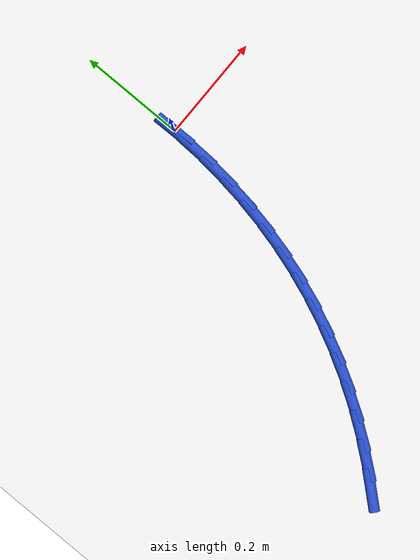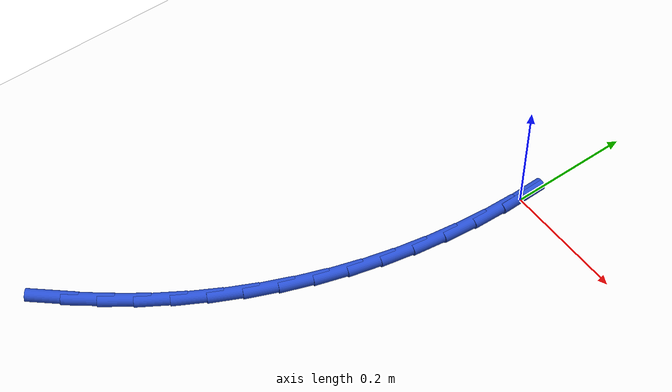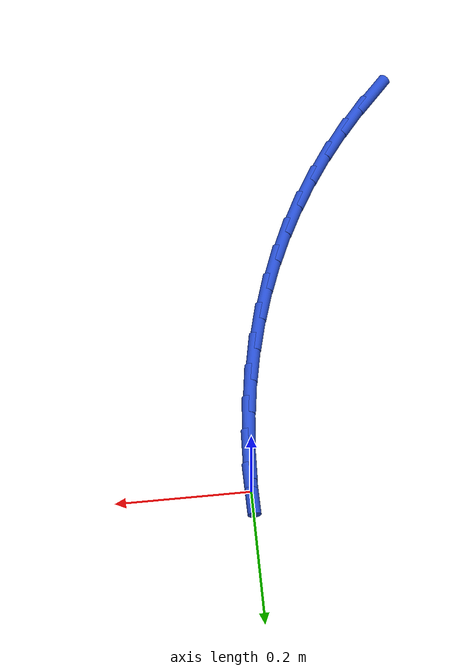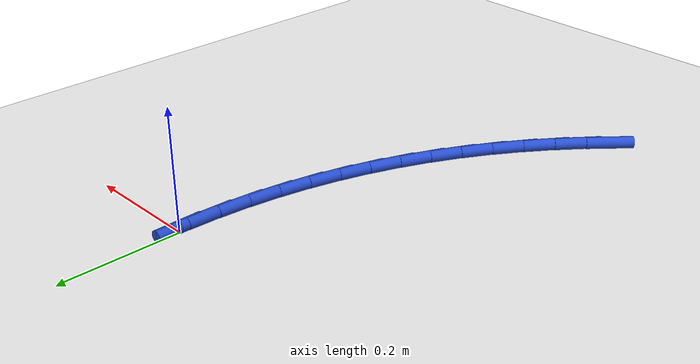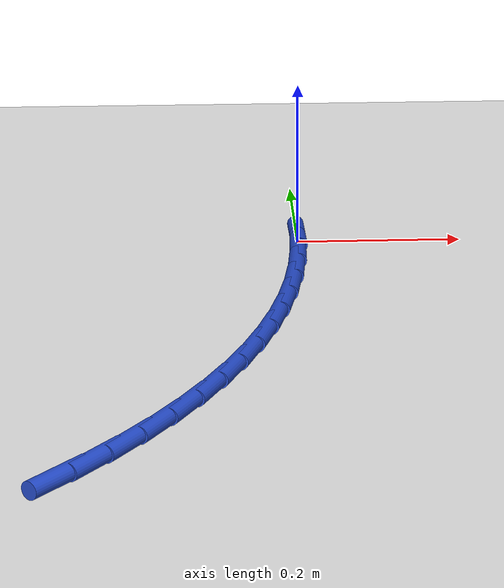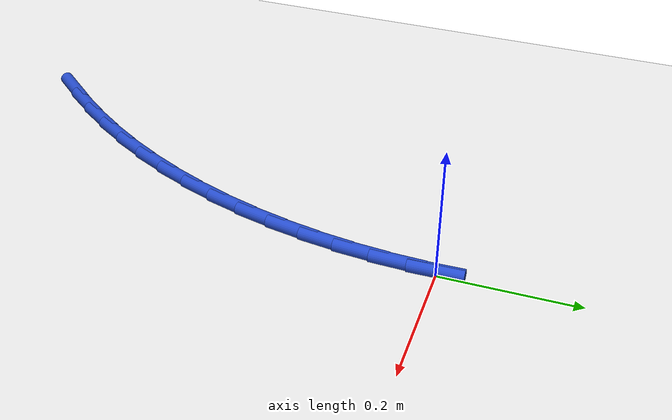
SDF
<sdf version="1.6">
 <world name="default">
  <model name="ground_plane">
   <static>1</static>
   <link name="link">
    <collision name="collision">
     <geometry><plane><normal>0 0 1</normal><size>100 100</size></plane></geometry>
     <surface><friction><ode><mu>100</mu><mu2>50</mu2></ode></friction></surface>
    </collision>
    <visual name="visual">
     <cast_shadows>0</cast_shadows>
     <geometry><plane><normal>0 0 1</normal><size>100 100</size></plane></geometry>
     <material>
      <script><uri>file://media/materials/scripts/gazebo.material</uri><name>Gazebo/WhiteGlow</name></script>
     </material>
    </visual>
   </link>
  </model>
  <model name="line">
   <link name="link_0">
    <pose>1.734723475976807e-18 -1.249000902703301e-16 0.01 0 1.57 -1.555388530967159</pose>
    <collision name="collision">
     <geometry><cylinder><radius>0.01</radius><length>0.08</length></cylinder></geometry>
    </collision>
    <visual name="visual">
     <material>
      <script><name>Gazebo/Blue</name><uri>file://media/materials/scripts/gazebo.material</uri></script>
     </material>
     <geometry><cylinder><radius>0.01</radius><length>0.08</length></cylinder></geometry>
    </visual>
   </link>
   <link name="link_116">
    <pose>-0.26655611558166487 -0.6804469200753811 0.01 0 1.57 0.8530632694350817</pose>
    <collision name="collision">
     <geometry><cylinder><radius>0.01</radius><length>0.08</length></cylinder></geometry>
    </collision>
    <visual name="visual">
     <material>
      <script><name>Gazebo/Blue</name><uri>file://media/materials/scripts/gazebo.material</uri></script>
     </material>
     <geometry><cylinder><radius>0.01</radius><length>0.08</length></cylinder></geometry>
    </visual>
   </link>
   <link name="link_117">
    <pose>-0.23127960323522714 -0.6400415555155271 0.01 0 1.57 0.906062093484763</pose>
    <collision name="collision">
     <geometry><cylinder><radius>0.01</radius><length>0.08</length></cylinder></geometry>
    </collision>
    <visual name="visual">
     <material>
      <script><name>Gazebo/Blue</name><uri>file://media/materials/scripts/gazebo.material</uri></script>
     </material>
     <geometry><cylinder><radius>0.01</radius><length>0.08</length></cylinder></geometry>
    </visual>
   </link>
   <link name="link_118">
    <pose>-0.19810758145420768 -0.5977151213888643 0.01 0 1.57 0.9587626829558207</pose>
    <collision name="collision">
     <geometry><cylinder><radius>0.01</radius><length>0.08</length></cylinder></geometry>
    </collision>
    <visual name="visual">
     <material>
      <script><name>Gazebo/Blue</name><uri>file://media/materials/scripts/gazebo.material</uri></script>
     </material>
     <geometry><cylinder><radius>0.01</radius><length>0.08</length></cylinder></geometry>
    </visual>
   </link>
   <link name="link_119">
    <pose>-0.1671922350426652 -0.5536730438337166 0.01 0 1.57 1.011624143923555</pose>
    <collision name="collision">
     <geometry><cylinder><radius>0.01</radius><length>0.08</length></cylinder></geometry>
    </collision>
    <visual name="visual">
     <material>
      <script><name>Gazebo/Blue</name><uri>file://media/materials/scripts/gazebo.material</uri></script>
     </material>
     <geometry><cylinder><radius>0.01</radius><length>0.08</length></cylinder></geometry>
    </visual>
   </link>
   <link name="link_120">
    <pose>-0.13868574880465728 -0.508120748988407 0.01 0 1.57 1.0651057782045834</pose>
    <collision name="collision">
     <geometry><cylinder><radius>0.01</radius><length>0.08</length></cylinder></geometry>
    </collision>
    <visual name="visual">
     <material>
      <script><name>Gazebo/Blue</name><uri>file://media/materials/scripts/gazebo.material</uri></script>
     </material>
     <geometry><cylinder><radius>0.01</radius><length>0.08</length></cylinder></geometry>
    </visual>
   </link>
   <link name="link_121">
    <pose>-0.11274029734782665 -0.46126365532418756 0.01 0 1.57 1.1193233261048443</pose>
    <collision name="collision">
     <geometry><cylinder><radius>0.01</radius><length>0.08</length></cylinder></geometry>
    </collision>
    <visual name="visual">
     <material>
      <script><name>Gazebo/Blue</name><uri>file://media/materials/scripts/gazebo.material</uri></script>
     </material>
     <geometry><cylinder><radius>0.01</radius><length>0.08</length></cylinder></geometry>
    </visual>
   </link>
   <link name="link_122">
    <pose>-0.08947569653867672 -0.4132828495499001 0.01 0 1.57 1.1733883402638</pose>
    <collision name="collision">
     <geometry><cylinder><radius>0.01</radius><length>0.08</length></cylinder></geometry>
    </collision>
    <visual name="visual">
     <material>
      <script><name>Gazebo/Blue</name><uri>file://media/materials/scripts/gazebo.material</uri></script>
     </material>
     <geometry><cylinder><radius>0.01</radius><length>0.08</length></cylinder></geometry>
    </visual>
   </link>
   <link name="link_123">
    <pose>-0.06890765950329737 -0.36428113958303515 0.01 0 1.57 1.2270170465708767</pose>
    <collision name="collision">
     <geometry><cylinder><radius>0.01</radius><length>0.08</length></cylinder></geometry>
    </collision>
    <visual name="visual">
     <material>
      <script><name>Gazebo/Blue</name><uri>file://media/materials/scripts/gazebo.material</uri></script>
     </material>
     <geometry><cylinder><radius>0.01</radius><length>0.08</length></cylinder></geometry>
    </visual>
   </link>
   <link name="link_124">
    <pose>-0.051031005456912686 -0.3143456224185603 0.01 0 1.57 1.280138536068187</pose>
    <collision name="collision">
     <geometry><cylinder><radius>0.01</radius><length>0.08</length></cylinder></geometry>
    </collision>
    <visual name="visual">
     <material>
      <script><name>Gazebo/Blue</name><uri>file://media/materials/scripts/gazebo.material</uri></script>
     </material>
     <geometry><cylinder><radius>0.01</radius><length>0.08</length></cylinder></geometry>
    </visual>
   </link>
   <link name="link_125">
    <pose>-0.03584055361474585 -0.26356339505144116 0.01 0 1.57 1.3326958291357283</pose>
    <collision name="collision">
     <geometry><cylinder><radius>0.01</radius><length>0.08</length></cylinder></geometry>
    </collision>
    <visual name="visual">
     <material>
      <script><name>Gazebo/Blue</name><uri>file://media/materials/scripts/gazebo.material</uri></script>
     </material>
     <geometry><cylinder><radius>0.01</radius><length>0.08</length></cylinder></geometry>
    </visual>
   </link>
   <link name="link_126">
    <pose>-0.023331123192020096 -0.21202155447664323 0.01 0 1.57 1.384645576903758</pose>
    <collision name="collision">
     <geometry><cylinder><radius>0.01</radius><length>0.08</length></cylinder></geometry>
    </collision>
    <visual name="visual">
     <material>
      <script><name>Gazebo/Blue</name><uri>file://media/materials/scripts/gazebo.material</uri></script>
     </material>
     <geometry><cylinder><radius>0.01</radius><length>0.08</length></cylinder></geometry>
    </visual>
   </link>
   <link name="link_127">
    <pose>-0.013497533403959294 -0.15980719768913432 0.01 0 1.57 1.4359573799148642</pose>
    <collision name="collision">
     <geometry><cylinder><radius>0.01</radius><length>0.08</length></cylinder></geometry>
    </collision>
    <visual name="visual">
     <material>
      <script><name>Gazebo/Blue</name><uri>file://media/materials/scripts/gazebo.material</uri></script>
     </material>
     <geometry><cylinder><radius>0.01</radius><length>0.08</length></cylinder></geometry>
    </visual>
   </link>
   <link name="link_128">
    <pose>-0.006334603465786702 -0.10700742168388003 0.01 0 1.57 1.4866128057450154</pose>
    <collision name="collision">
     <geometry><cylinder><radius>0.01</radius><length>0.08</length></cylinder></geometry>
    </collision>
    <visual name="visual">
     <material>
      <script><name>Gazebo/Blue</name><uri>file://media/materials/scripts/gazebo.material</uri></script>
     </material>
     <geometry><cylinder><radius>0.01</radius><length>0.08</length></cylinder></geometry>
    </visual>
   </link>
   <link name="link_129">
    <pose>-0.0018371525927257833 -0.053709323455846565 0.01 0 1.57 1.536604188838511</pose>
    <collision name="collision">
     <geometry><cylinder><radius>0.01</radius><length>0.08</length></cylinder></geometry>
    </collision>
    <visual name="visual">
     <material>
      <script><name>Gazebo/Blue</name><uri>file://media/materials/scripts/gazebo.material</uri></script>
     </material>
     <geometry><cylinder><radius>0.01</radius><length>0.08</length></cylinder></geometry>
    </visual>
   </link>
   <link name="link_130">
    <pose>-1.0408340855860843e-17 -2.914335439641036e-16 0.01 0 1.57 -1.5556593624975132</pose>
    <collision name="collision">
     <geometry><cylinder><radius>0.01</radius><length>0.08</length></cylinder></geometry>
    </collision>
    <visual name="visual">
     <material>
      <script><name>Gazebo/Blue</name><uri>file://media/materials/scripts/gazebo.material</uri></script>
     </material>
     <geometry><cylinder><radius>0.01</radius><length>0.08</length></cylinder></geometry>
    </visual>
   </link>
  </model>
 </world>
</sdf>
